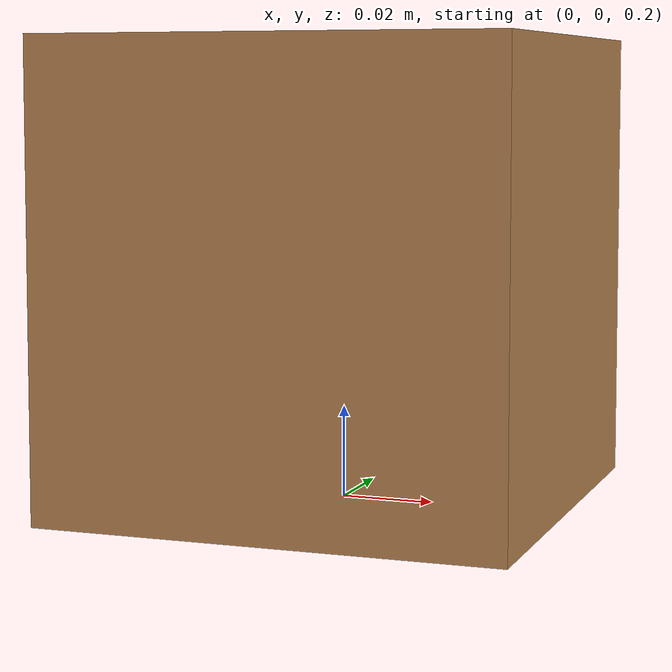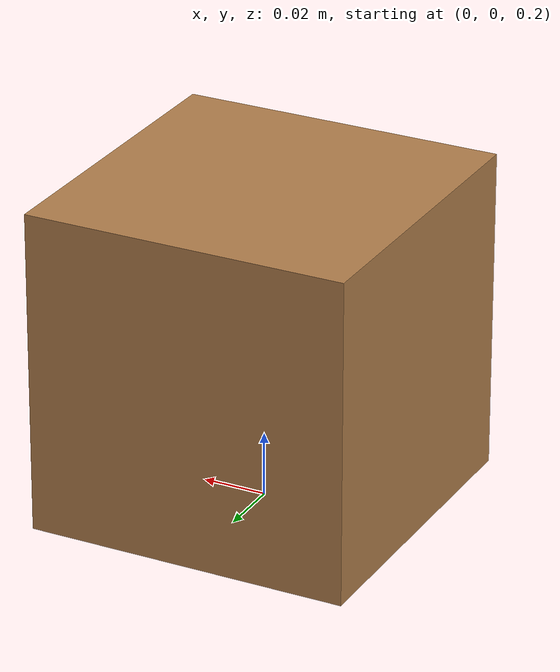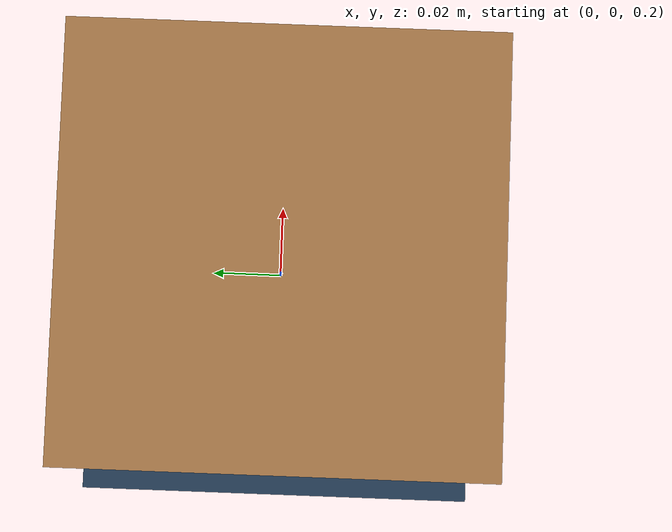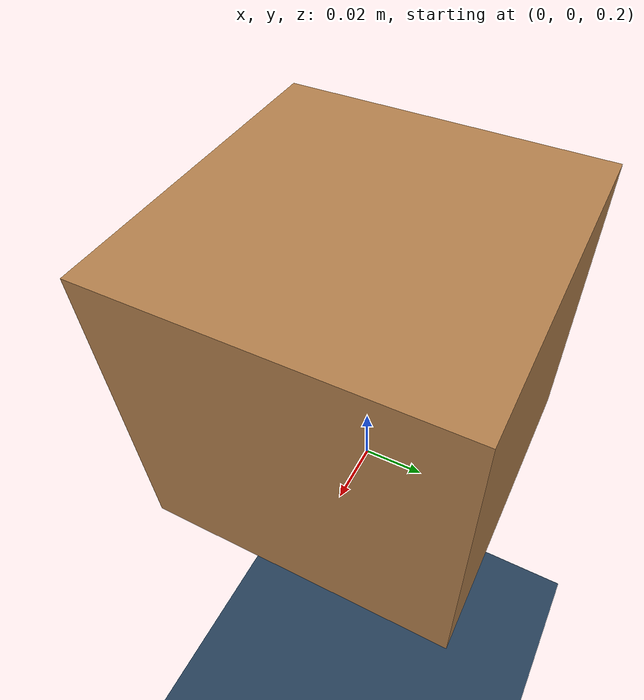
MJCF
<mujoco model="Box3Drot">
  <option timestep="0.005"/>
  <default>
    <geom solimp="0 0.95 0.001"/>
  </default>

  <visual>
    <headlight ambient=".4 .4 .4" diffuse=".8 .8 .8" specular="0.1 0.1 0.1"/>
    <map znear=".01"/>
    <quality shadowsize="2048"/>
    <global offheight="1024" offwidth="1024"/>
  </visual>

  <asset>
    <texture name="skybox" type="skybox" builtin="gradient" rgb1="0 0 0" rgb2="0 0 0"
             width="800" height="800" mark="random" markrgb="0 0 0"/>
  </asset>

  <asset>
      <texture name="grid" type="2d" builtin="checker" rgb1=".1 .2 .3" rgb2=".2 .3 .4" width="300" height="300" mark="edge" markrgb=".2 .3 .4"/>
      <material name="grid" texture="grid" texrepeat="1 1" texuniform="true" reflectance=".2"/>
      <material name="self" rgba=".7 .5 .3 1"/>
      <material name="self_default" rgba=".7 .5 .3 1"/>
      <material name="self_highlight" rgba="0 .5 .3 1"/>
      <material name="effector" rgba=".7 .4 .2 1"/>
      <material name="effector_default" rgba=".7 .4 .2 1"/>
      <material name="effector_highlight" rgba="0 .5 .3 1"/>
      <material name="decoration" rgba=".3 .5 .7 1"/>
      <material name="eye" rgba="0 .2 1 1"/>
      <material name="target" rgba="0 1 0 0.5"/>
      <material name="target_default" rgba=".6 .3 .3 1"/>
      <material name="target_highlight" rgba=".6 .3 .3 .4"/>
      <material name="site" rgba=".5 .5 .5 .3"/>
  </asset>

  <worldbody>
    <light diffuse=".5 .5 .5" pos="0 0 3" dir="0 0 -1"/>
    <camera pos="-0.079 -0.587 0.400" xyaxes="0.951 -0.310 0.000 0.133 0.410 0.902"/>
    <geom name="ground" type="plane" pos="0 0 0" size=".3 .3 .1" material="grid"/>
    <body name="root" pos="0 0 0.25">
      <joint type="ball"/>
      <geom type="box" size=".05 .05 .05" material="self" mass="1.0"/>
      <site name="corner1" type="sphere" size="0.05" rgba="1 0 0 0" pos=".05 .05 .05"/>
      <site name="corner2" type="sphere" size="0.05" rgba="1 0 0 0" pos="-.05 .05 .05"/>
      <site name="corner3" type="sphere" size="0.05" rgba="1 0 0 0" pos=".05 -.05 .05"/>
      <site name="corner4" type="sphere" size="0.05" rgba="1 0 0 0" pos=".05 .05 -.05"/>
      <site name="corner5" type="sphere" size="0.05" rgba="1 0 0 0" pos="-.05 -.05 .05"/>
      <site name="corner6" type="sphere" size="0.05" rgba="1 0 0 0" pos=".05 -.05 -.05"/>
      <site name="corner7" type="sphere" size="0.05" rgba="1 0 0 0" pos="-.05 .05 -.05"/>
      <site name="corner8" type="sphere" size="0.05" rgba="1 0 0 0" pos="-.05 -.05 -.05"/>
    </body>
  </worldbody>

  <sensor>
    <!-- corner positions -->
    <framepos name="corner_position1" objtype="site" objname="corner1"/>
    <framepos name="corner_position2" objtype="site" objname="corner2"/>
    <framepos name="corner_position3" objtype="site" objname="corner3"/>
    <framepos name="corner_position4" objtype="site" objname="corner4"/>
    <framepos name="corner_position5" objtype="site" objname="corner5"/>
    <framepos name="corner_position6" objtype="site" objname="corner6"/>
    <framepos name="corner_position7" objtype="site" objname="corner7"/>
    <framepos name="corner_position8" objtype="site" objname="corner8"/>

    <!-- corner velocities -->
    <framelinvel name="vcorner_position1" objtype="site" objname="corner1"/>
    <framelinvel name="vcorner_position2" objtype="site" objname="corner2"/>
    <framelinvel name="vcorner_position3" objtype="site" objname="corner3"/>
    <framelinvel name="vcorner_position4" objtype="site" objname="corner4"/>
    <framelinvel name="vcorner_position5" objtype="site" objname="corner5"/>
    <framelinvel name="vcorner_position6" objtype="site" objname="corner6"/>
    <framelinvel name="vcorner_position7" objtype="site" objname="corner7"/>
    <framelinvel name="vcorner_position8" objtype="site" objname="corner8"/>
  </sensor>
</mujoco>
